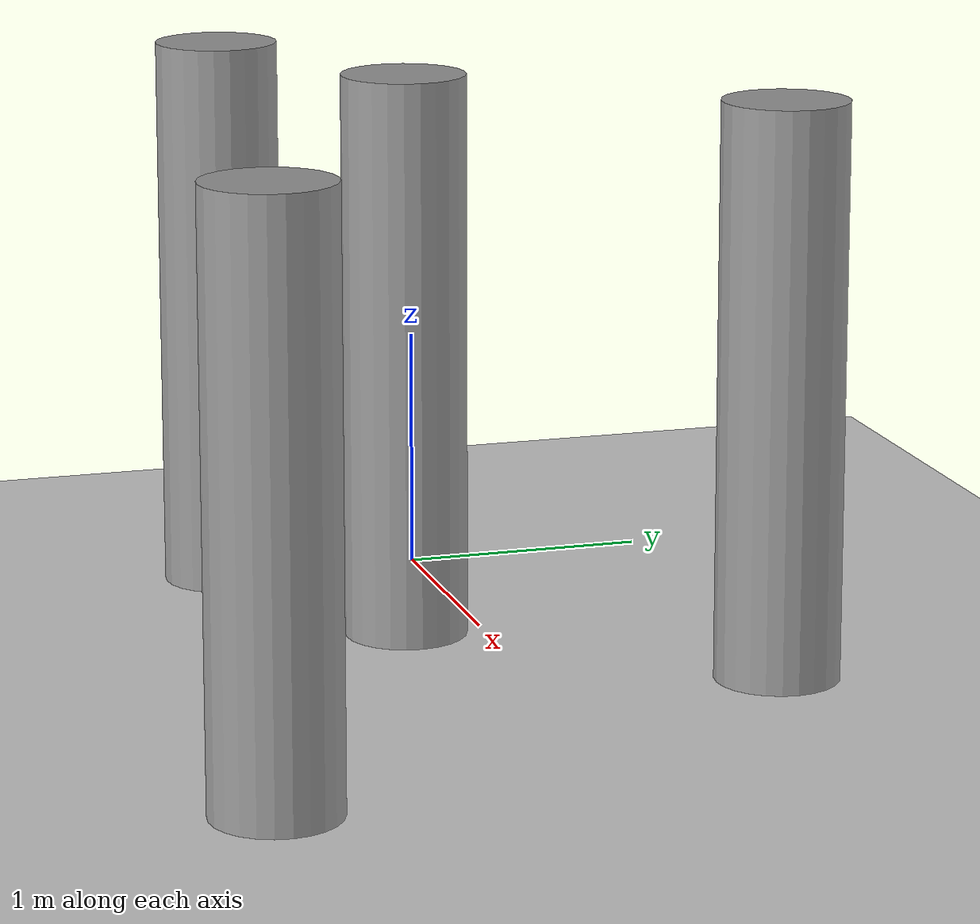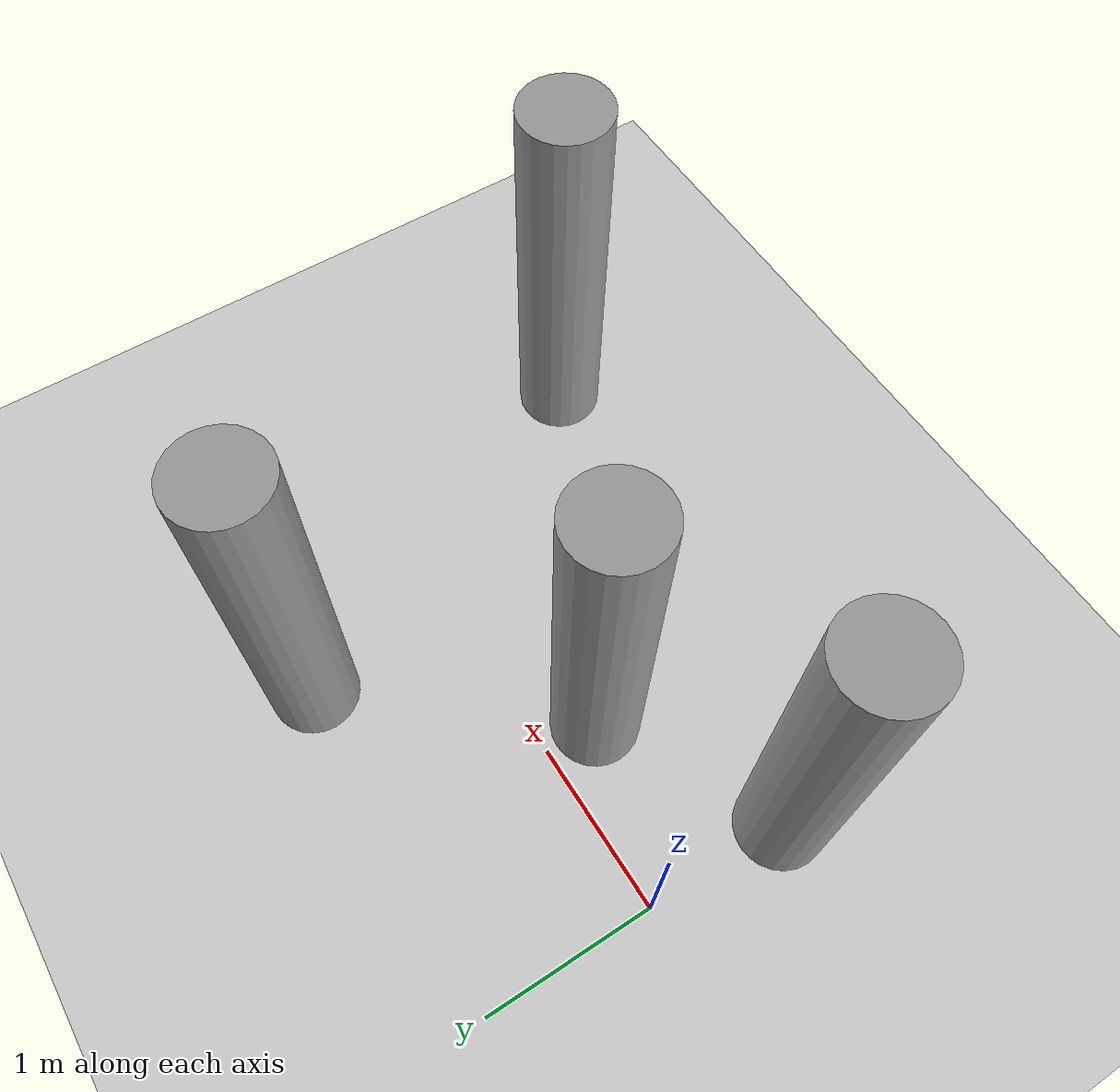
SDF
<sdf version="1.6">
 <world name="default">
  <light name="sun" type="directional">
   <pose>0 0 10 0 -0 0</pose>
   <diffuse>0.8 0.8 0.8 1</diffuse>
   <specular>0.2 0.2 0.2 1</specular>
   <attenuation>
    <range>1000</range>
    <constant>0.9</constant>
    <linear>0.01</linear>
    <quadratic>0.001</quadratic>
   </attenuation>
   <direction>-0.5 0.1 -0.9</direction>
  </light>
  <model name="ground_plane">
   <static>1</static>
   <link name="link">
    <collision name="collision">
     <geometry><plane><normal>0 0 1</normal><size>100 100</size></plane></geometry>
     <surface>
      <contact><collide_bitmask>65535</collide_bitmask></contact>
      <friction><ode><mu>0</mu><mu2>0</mu2></ode></friction>
     </surface>
    </collision>
    <visual name="visual">
     <cast_shadows>0</cast_shadows>
     <geometry><plane><normal>0 0 1</normal><size>100 100</size></plane></geometry>
     <material>
      <script><uri>file://media/materials/scripts/gazebo.material</uri><name>Gazebo/Grey</name></script>
     </material>
    </visual>
   </link>
  </model>
  <gravity>0 0 -9.8</gravity>
  <magnetic_field>6e-06 2.3e-05 -4.2e-05</magnetic_field>
  <atmosphere type="adiabatic"/>
  <physics name="default_physics" default="0" type="ode">
   <max_step_size>0.001</max_step_size>
   <real_time_factor>1</real_time_factor>
   <real_time_update_rate>1000</real_time_update_rate>
  </physics>
  <scene><ambient>0.4 0.4 0.4 1</ambient><background>0.7 0.7 0.7 1</background><shadows>1</shadows></scene>
  <audio><device>default</device></audio>
  <spherical_coordinates>
   <surface_model>EARTH_WGS84</surface_model>
   <latitude_deg>0</latitude_deg>
   <longitude_deg>0</longitude_deg>
   <elevation>0</elevation>
   <heading_deg>0</heading_deg>
  </spherical_coordinates>
  <model name="columna">
   <link name="link">
    <inertial>
     <mass>1</mass>
     <inertia><ixx>0.145833</ixx><ixy>0</ixy><ixz>0</ixz><iyy>0.145833</iyy><iyz>0</iyz><izz>0.125</izz></inertia>
    </inertial>
    <visual name="visual">
     <geometry><cylinder><radius>0.25</radius><length>2.3</length></cylinder></geometry>
     <material>
      <script><name>Gazebo/Grey</name><uri>file://media/materials/scripts/gazebo.material</uri></script>
      <shader type="vertex"><normal_map>__default__</normal_map></shader>
      <ambient>0.3 0.3 0.3 1</ambient>
      <diffuse>0.7 0.7 0.7 1</diffuse>
      <specular>0.01 0.01 0.01 1</specular>
      <emissive>0 0 0 1</emissive>
     </material>
    </visual>
    <collision name="collision">
     <geometry><cylinder><radius>0.25</radius><length>2.3</length></cylinder></geometry>
     <surface>
      <friction>
       <ode><mu>1</mu><mu2>1</mu2><fdir1>0 0 0</fdir1><slip1>0</slip1><slip2>0</slip2></ode>
       <torsional>
        <coefficient>1</coefficient>
        <patch_radius>0</patch_radius>
        <surface_radius>0</surface_radius>
        <use_patch_radius>1</use_patch_radius>
        <ode><slip>0</slip></ode>
       </torsional>
      </friction>
      <bounce><restitution_coefficient>0</restitution_coefficient><threshold>1e+06</threshold></bounce>
      <contact>
       <collide_without_contact>0</collide_without_contact>
       <collide_without_contact_bitmask>1</collide_without_contact_bitmask>
       <collide_bitmask>1</collide_bitmask>
       <ode>
        <soft_cfm>0</soft_cfm>
        <soft_erp>0.2</soft_erp>
        <kp>1e+13</kp>
        <kd>1</kd>
        <max_vel>0.01</max_vel>
        <min_depth>0</min_depth>
       </ode>
       <bullet>
        <split_impulse>1</split_impulse>
        <split_impulse_penetration_threshold>-0.01</split_impulse_penetration_threshold>
        <soft_cfm>0</soft_cfm>
        <soft_erp>0.2</soft_erp>
        <kp>1e+13</kp>
        <kd>1</kd>
       </bullet>
      </contact>
     </surface>
    </collision>
   </link>
   <static>0</static>
   <pose>0 -0.833125 1.14999 1e-06 1e-06 0</pose>
   <plugin name="Move" filename="libmove_plugin_node.so"/>
  </model>
  <model name="columna_0">
   <link name="link">
    <inertial>
     <mass>1</mass>
     <inertia><ixx>0.145833</ixx><ixy>0</ixy><ixz>0</ixz><iyy>0.145833</iyy><iyz>0</iyz><izz>0.125</izz></inertia>
    </inertial>
    <visual name="visual">
     <geometry><cylinder><radius>0.25</radius><length>2.3</length></cylinder></geometry>
     <material>
      <script><name>Gazebo/Grey</name><uri>file://media/materials/scripts/gazebo.material</uri></script>
      <shader type="vertex"><normal_map>__default__</normal_map></shader>
      <ambient>0.3 0.3 0.3 1</ambient>
      <diffuse>0.7 0.7 0.7 1</diffuse>
      <specular>0.01 0.01 0.01 1</specular>
      <emissive>0 0 0 1</emissive>
     </material>
    </visual>
    <collision name="collision">
     <geometry><cylinder><radius>0.25</radius><length>2.3</length></cylinder></geometry>
     <surface>
      <friction>
       <ode><mu>1</mu><mu2>1</mu2><fdir1>0 0 0</fdir1><slip1>0</slip1><slip2>0</slip2></ode>
       <torsional>
        <coefficient>1</coefficient>
        <patch_radius>0</patch_radius>
        <surface_radius>0</surface_radius>
        <use_patch_radius>1</use_patch_radius>
        <ode><slip>0</slip></ode>
       </torsional>
      </friction>
      <bounce><restitution_coefficient>0</restitution_coefficient><threshold>1e+06</threshold></bounce>
      <contact>
       <collide_without_contact>0</collide_without_contact>
       <collide_without_contact_bitmask>1</collide_without_contact_bitmask>
       <collide_bitmask>1</collide_bitmask>
       <ode>
        <soft_cfm>0</soft_cfm>
        <soft_erp>0.2</soft_erp>
        <kp>1e+13</kp>
        <kd>1</kd>
        <max_vel>0.01</max_vel>
        <min_depth>0</min_depth>
       </ode>
       <bullet>
        <split_impulse>1</split_impulse>
        <split_impulse_penetration_threshold>-0.01</split_impulse_penetration_threshold>
        <soft_cfm>0</soft_cfm>
        <soft_erp>0.2</soft_erp>
        <kp>1e+13</kp>
        <kd>1</kd>
       </bullet>
      </contact>
     </surface>
    </collision>
   </link>
   <static>0</static>
   <pose>1 -0.309535 1.14999 1e-06 1e-06 0</pose>
   <plugin name="Move" filename="libmove_plugin_node.so"/>
  </model>
  <model name="columna_1">
   <link name="link">
    <inertial>
     <mass>1</mass>
     <inertia><ixx>0.145833</ixx><ixy>0</ixy><ixz>0</ixz><iyy>0.145833</iyy><iyz>0</iyz><izz>0.125</izz></inertia>
    </inertial>
    <visual name="visual">
     <geometry><cylinder><radius>0.25</radius><length>2.3</length></cylinder></geometry>
     <material>
      <script><name>Gazebo/Grey</name><uri>file://media/materials/scripts/gazebo.material</uri></script>
      <shader type="vertex"><normal_map>__default__</normal_map></shader>
      <ambient>0.3 0.3 0.3 1</ambient>
      <diffuse>0.7 0.7 0.7 1</diffuse>
      <specular>0.01 0.01 0.01 1</specular>
      <emissive>0 0 0 1</emissive>
     </material>
    </visual>
    <collision name="collision">
     <geometry><cylinder><radius>0.25</radius><length>2.3</length></cylinder></geometry>
     <surface>
      <friction>
       <ode><mu>1</mu><mu2>1</mu2><fdir1>0 0 0</fdir1><slip1>0</slip1><slip2>0</slip2></ode>
       <torsional>
        <coefficient>1</coefficient>
        <patch_radius>0</patch_radius>
        <surface_radius>0</surface_radius>
        <use_patch_radius>1</use_patch_radius>
        <ode><slip>0</slip></ode>
       </torsional>
      </friction>
      <bounce><restitution_coefficient>0</restitution_coefficient><threshold>1e+06</threshold></bounce>
      <contact>
       <collide_without_contact>0</collide_without_contact>
       <collide_without_contact_bitmask>1</collide_without_contact_bitmask>
       <collide_bitmask>1</collide_bitmask>
       <ode>
        <soft_cfm>0</soft_cfm>
        <soft_erp>0.2</soft_erp>
        <kp>1e+13</kp>
        <kd>1</kd>
        <max_vel>0.01</max_vel>
        <min_depth>0</min_depth>
       </ode>
       <bullet>
        <split_impulse>1</split_impulse>
        <split_impulse_penetration_threshold>-0.01</split_impulse_penetration_threshold>
        <soft_cfm>0</soft_cfm>
        <soft_erp>0.2</soft_erp>
        <kp>1e+13</kp>
        <kd>1</kd>
       </bullet>
      </contact>
     </surface>
    </collision>
   </link>
   <static>0</static>
   <pose>2 0.922754 1.14999 1e-06 1e-06 0</pose>
   <plugin name="Move" filename="libmove_plugin_node.so"/>
  </model>
  <model name="columna_2">
   <link name="link">
    <inertial>
     <mass>1</mass>
     <inertia><ixx>0.145833</ixx><ixy>0</ixy><ixz>0</ixz><iyy>0.145833</iyy><iyz>0</iyz><izz>0.125</izz></inertia>
    </inertial>
    <visual name="visual">
     <geometry><cylinder><radius>0.25</radius><length>2.3</length></cylinder></geometry>
     <material>
      <script><name>Gazebo/Grey</name><uri>file://media/materials/scripts/gazebo.material</uri></script>
      <shader type="vertex"><normal_map>__default__</normal_map></shader>
      <ambient>0.3 0.3 0.3 1</ambient>
      <diffuse>0.7 0.7 0.7 1</diffuse>
      <specular>0.01 0.01 0.01 1</specular>
      <emissive>0 0 0 1</emissive>
     </material>
    </visual>
    <collision name="collision">
     <geometry><cylinder><radius>0.25</radius><length>2.3</length></cylinder></geometry>
     <surface>
      <friction>
       <ode><mu>1</mu><mu2>1</mu2><fdir1>0 0 0</fdir1><slip1>0</slip1><slip2>0</slip2></ode>
       <torsional>
        <coefficient>1</coefficient>
        <patch_radius>0</patch_radius>
        <surface_radius>0</surface_radius>
        <use_patch_radius>1</use_patch_radius>
        <ode><slip>0</slip></ode>
       </torsional>
      </friction>
      <bounce><restitution_coefficient>0</restitution_coefficient><threshold>1e+06</threshold></bounce>
      <contact>
       <collide_without_contact>0</collide_without_contact>
       <collide_without_contact_bitmask>1</collide_without_contact_bitmask>
       <collide_bitmask>1</collide_bitmask>
       <ode>
        <soft_cfm>0</soft_cfm>
        <soft_erp>0.2</soft_erp>
        <kp>1e+13</kp>
        <kd>1</kd>
        <max_vel>0.01</max_vel>
        <min_depth>0</min_depth>
       </ode>
       <bullet>
        <split_impulse>1</split_impulse>
        <split_impulse_penetration_threshold>-0.01</split_impulse_penetration_threshold>
        <soft_cfm>0</soft_cfm>
        <soft_erp>0.2</soft_erp>
        <kp>1e+13</kp>
        <kd>1</kd>
       </bullet>
      </contact>
     </surface>
    </collision>
   </link>
   <static>0</static>
   <pose>3 -1.35173 1.14999 1e-06 1e-06 0</pose>
   <plugin name="Move" filename="libmove_plugin_node.so"/>
  </model>
 </world>
</sdf>
